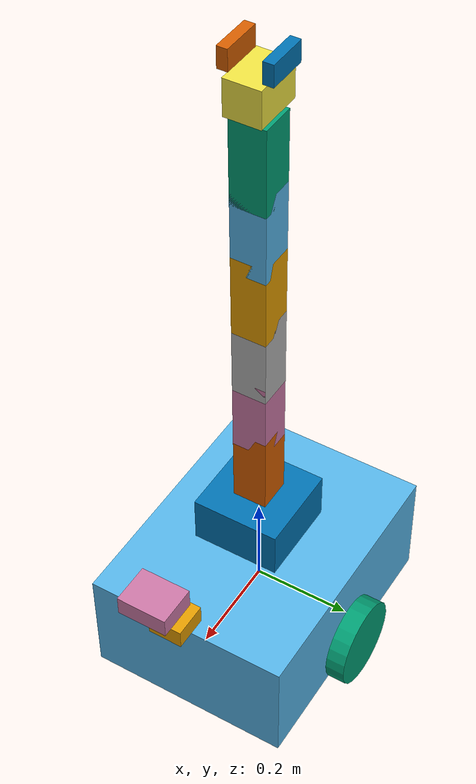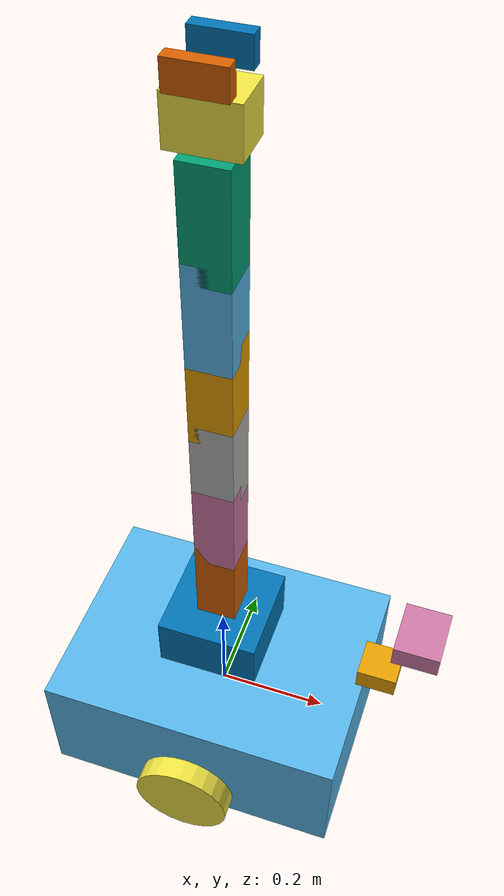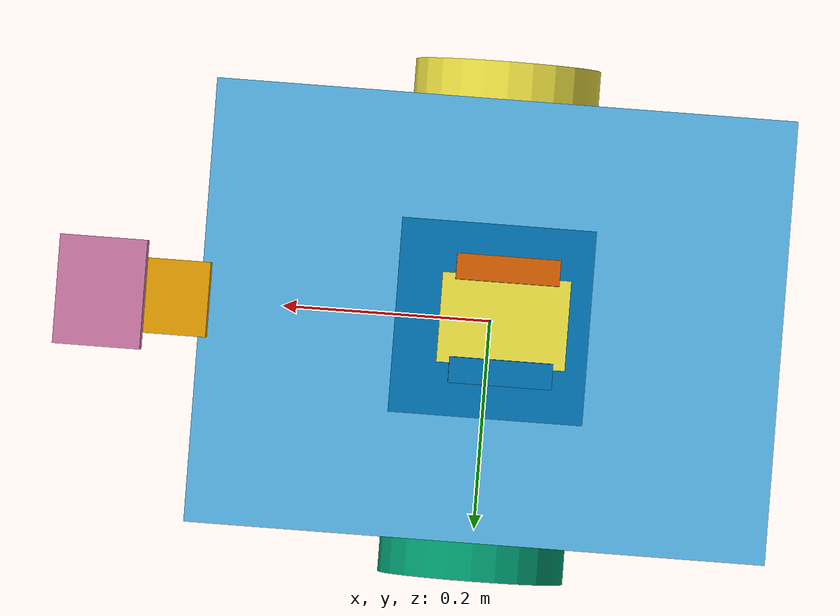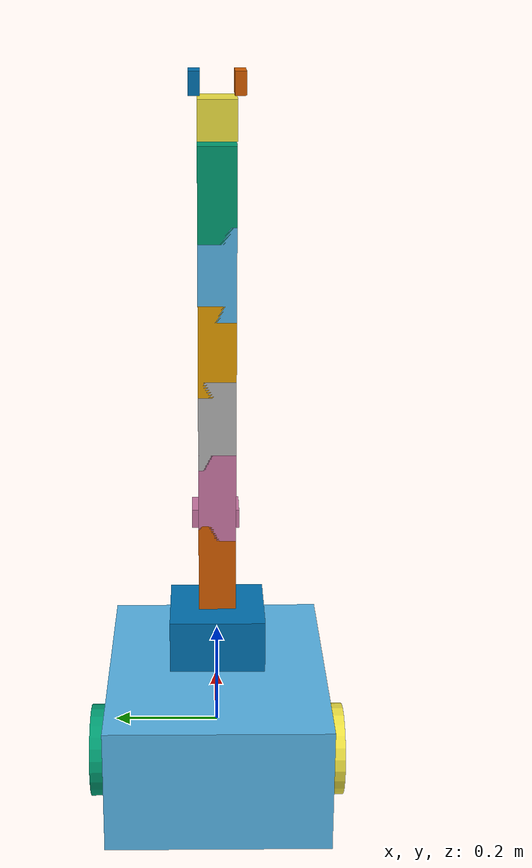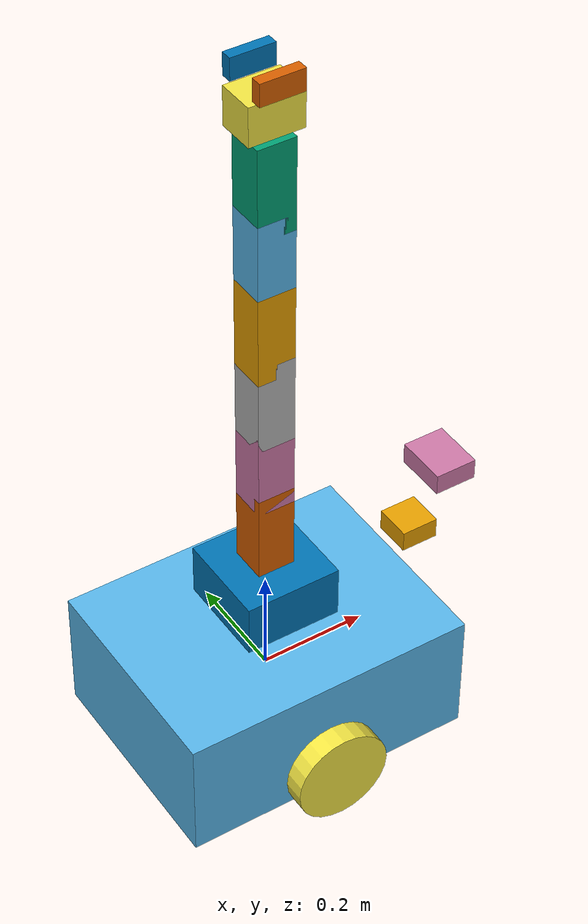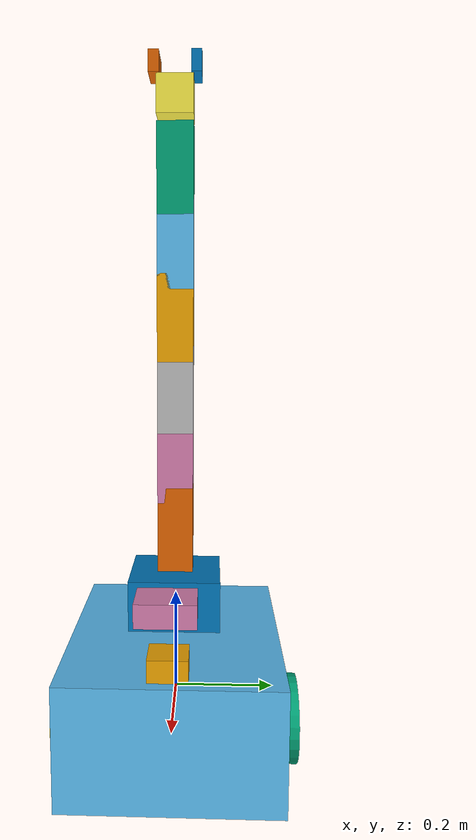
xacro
<?xml version="1.0"?>
<robot xmlns:xacro="http://www.ros.org/wiki/xacro" name="astra_synthetic_v1">
  <xacro:arg name="controllers_file" default="$(find astra_description)/config/controllers.yaml"/>
  <xacro:macro name="simple_link" params="name mass sx sy sz">
    <link name="${name}">
      <visual><geometry><box size="${sx} ${sy} ${sz}"/></geometry></visual>
      <collision><geometry><box size="${sx} ${sy} ${sz}"/></geometry></collision>
      <inertial><mass value="${mass}"/><origin xyz="0 0 0"/>
        <inertia ixx="0.02" ixy="0" ixz="0" iyy="0.02" iyz="0" izz="0.02"/>
      </inertial>
    </link>
  </xacro:macro>
  <link name="base_footprint"/>
  <xacro:simple_link name="base_link" mass="20" sx="0.55" sy="0.42" sz="0.24"/>
  <joint name="base_footprint_joint" type="fixed"><parent link="base_footprint"/><child link="base_link"/></joint>
  <link name="left_wheel_link"><visual><geometry><cylinder radius="0.09" length="0.04"/></geometry></visual><collision><geometry><cylinder radius="0.09" length="0.04"/></geometry></collision><inertial><mass value="0.8"/><inertia ixx="0.01" ixy="0" ixz="0" iyy="0.01" iyz="0" izz="0.01"/></inertial></link>
  <link name="right_wheel_link"><visual><geometry><cylinder radius="0.09" length="0.04"/></geometry></visual><collision><geometry><cylinder radius="0.09" length="0.04"/></geometry></collision><inertial><mass value="0.8"/><inertia ixx="0.01" ixy="0" ixz="0" iyy="0.01" iyz="0" izz="0.01"/></inertial></link>
  <joint name="left_wheel_joint" type="continuous"><parent link="base_link"/><child link="left_wheel_link"/><origin xyz="0 0.23 -0.07" rpy="1.5708 0 0"/><axis xyz="0 0 1"/></joint>
  <joint name="right_wheel_joint" type="continuous"><parent link="base_link"/><child link="right_wheel_link"/><origin xyz="0 -0.23 -0.07" rpy="1.5708 0 0"/><axis xyz="0 0 1"/></joint>
  <xacro:simple_link name="arm_base_link" mass="2" sx="0.18" sy="0.18" sz="0.10"/>
  <joint name="arm_base_fixed" type="fixed"><parent link="base_link"/><child link="arm_base_link"/><origin xyz="0 0 0.2"/></joint>
  <xacro:macro name="arm_segment" params="number parent axis">
    <xacro:simple_link name="arm_link_${number}" mass="0.7" sx="0.07" sy="0.07" sz="0.17"/>
    <joint name="arm_joint_${number}" type="revolute"><parent link="${parent}"/><child link="arm_link_${number}"/><origin xyz="0 0 0.14"/><axis xyz="${axis}"/><limit lower="-1.5" upper="1.5" effort="12" velocity="0.5"/></joint>
  </xacro:macro>
  <xacro:arm_segment number="1" parent="arm_base_link" axis="0 0 1"/>
  <xacro:arm_segment number="2" parent="arm_link_1" axis="0 1 0"/>
  <xacro:arm_segment number="3" parent="arm_link_2" axis="0 1 0"/>
  <xacro:arm_segment number="4" parent="arm_link_3" axis="1 0 0"/>
  <xacro:arm_segment number="5" parent="arm_link_4" axis="0 1 0"/>
  <xacro:arm_segment number="6" parent="arm_link_5" axis="1 0 0"/>
  <xacro:simple_link name="tool0" mass="0.3" sx="0.10" sy="0.07" sz="0.07"/>
  <joint name="tool_mount" type="fixed"><parent link="arm_link_6"/><child link="tool0"/><origin xyz="0 0 0.13"/></joint>
  <xacro:simple_link name="gripper_left" mass="0.1" sx="0.08" sy="0.02" sz="0.04"/>
  <xacro:simple_link name="gripper_right" mass="0.1" sx="0.08" sy="0.02" sz="0.04"/>
  <joint name="gripper_left_mount" type="fixed"><parent link="tool0"/><child link="gripper_left"/><origin xyz="0 0.04 0.06"/></joint>
  <joint name="gripper_right_mount" type="fixed"><parent link="tool0"/><child link="gripper_right"/><origin xyz="0 -0.04 0.06"/></joint>
  <xacro:simple_link name="camera_link" mass="0.1" sx="0.08" sy="0.10" sz="0.04"/>
  <joint name="camera_mount" type="fixed"><parent link="base_link"/><child link="camera_link"/><origin xyz="0.36 0 0.30"/></joint>
  <link name="camera_optical_frame"/><joint name="camera_optical_joint" type="fixed"><parent link="camera_link"/><child link="camera_optical_frame"/><origin xyz="0.08 0 0" rpy="-1.5708 0 -1.5708"/></joint>
  <xacro:simple_link name="lidar_link" mass="0.1" sx="0.07" sy="0.07" sz="0.04"/>
  <joint name="lidar_mount" type="fixed"><parent link="base_link"/><child link="lidar_link"/><origin xyz="0.30 0 0.18"/></joint>
  <link name="imu_link"/><joint name="imu_mount" type="fixed"><parent link="base_link"/><child link="imu_link"/></joint>
  <link name="bumper_link"/><joint name="bumper_mount" type="fixed"><parent link="base_link"/><child link="bumper_link"/><origin xyz="0.29 0 0"/></joint>
  <xacro:macro name="arm_control" params="number">
    <joint name="arm_joint_${number}">
      <command_interface name="position"><param name="min">-1.5</param><param name="max">1.5</param></command_interface>
      <state_interface name="position"><param name="initial_value">0.0</param></state_interface>
      <state_interface name="velocity"/>
    </joint>
  </xacro:macro>
  <ros2_control name="AstraArmSim" type="system">
    <hardware><plugin>gz_ros2_control/GazeboSimSystem</plugin></hardware>
    <xacro:arm_control number="1"/>
    <xacro:arm_control number="2"/>
    <xacro:arm_control number="3"/>
    <xacro:arm_control number="4"/>
    <xacro:arm_control number="5"/>
    <xacro:arm_control number="6"/>
  </ros2_control>
  <gazebo>
    <plugin filename="libgz_ros2_control-system.so" name="gz_ros2_control::GazeboSimROS2ControlPlugin">
      <parameters>$(arg controllers_file)</parameters>
      <ros><remapping>/robot_description:=/astra/robot_description</remapping></ros>
    </plugin>
  </gazebo>
  <gazebo reference="camera_link"><sensor name="head_rgbd" type="rgbd_camera"><pose>0.08 0 0 0 0 0</pose><always_on>true</always_on><update_rate>15</update_rate><topic>/astra/sensors/rgbd</topic><gz_frame_id>camera_optical_frame</gz_frame_id><camera><horizontal_fov>1.047</horizontal_fov><image><width>320</width><height>240</height><format>R8G8B8</format></image><clip><near>0.1</near><far>8.0</far></clip></camera></sensor></gazebo>
  <gazebo reference="lidar_link"><sensor name="lidar_2d" type="gpu_lidar"><always_on>true</always_on><update_rate>10</update_rate><topic>/astra/sensors/scan</topic><lidar><scan><horizontal><samples>360</samples><min_angle>-3.14159</min_angle><max_angle>3.14159</max_angle></horizontal></scan><range><min>0.1</min><max>10.0</max></range></lidar></sensor></gazebo>
  <gazebo reference="imu_link"><sensor name="imu" type="imu"><always_on>true</always_on><update_rate>50</update_rate><topic>/astra/sensors/imu</topic></sensor></gazebo>
  <gazebo><plugin filename="gz-sim-diff-drive-system" name="gz::sim::systems::DiffDrive"><left_joint>left_wheel_joint</left_joint><right_joint>right_wheel_joint</right_joint><wheel_separation>0.46</wheel_separation><wheel_radius>0.09</wheel_radius><topic>/astra/control/cmd_vel</topic><odom_topic>/astra/sensors/odom</odom_topic><frame_id>odom</frame_id><child_frame_id>base_link</child_frame_id><cmd_vel_timeout>0.25</cmd_vel_timeout></plugin></gazebo>
</robot>
